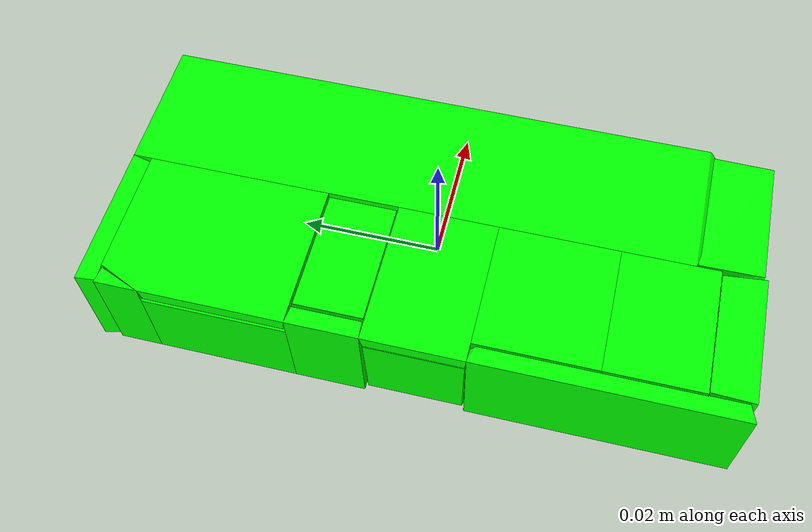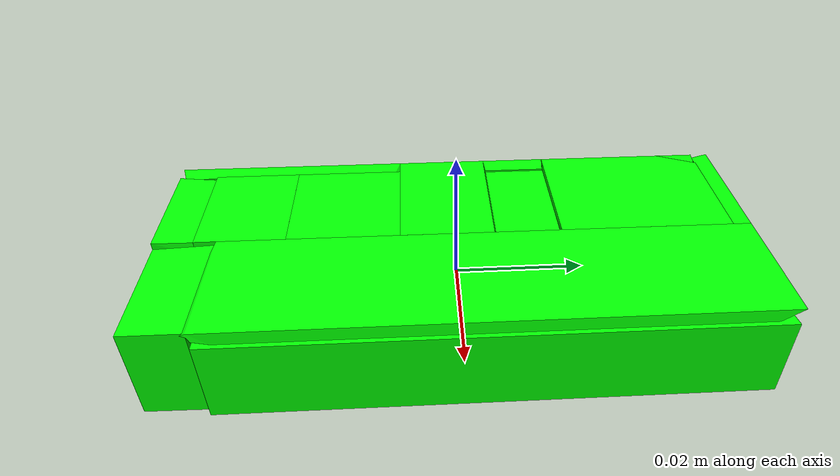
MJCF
<mujoco model="shapenet4-19">
  <asset>
    <mesh file="meshes/shapenet4-19/shapenet4-19_0.stl" name="shapenet4-19_0" scale="0.1 0.1 0.1"/>
    <mesh file="meshes/shapenet4-19/shapenet4-19_1.stl" name="shapenet4-19_1" scale="0.1 0.1 0.1"/>
    <mesh file="meshes/shapenet4-19/shapenet4-19_2.stl" name="shapenet4-19_2" scale="0.1 0.1 0.1"/>
    <mesh file="meshes/shapenet4-19/shapenet4-19_3.stl" name="shapenet4-19_3" scale="0.1 0.1 0.1"/>
    <mesh file="meshes/shapenet4-19/shapenet4-19_4.stl" name="shapenet4-19_4" scale="0.1 0.1 0.1"/>
    <mesh file="meshes/shapenet4-19/shapenet4-19_5.stl" name="shapenet4-19_5" scale="0.1 0.1 0.1"/>
    <mesh file="meshes/shapenet4-19/shapenet4-19_6.stl" name="shapenet4-19_6" scale="0.1 0.1 0.1"/>
    <mesh file="meshes/shapenet4-19/shapenet4-19_7.stl" name="shapenet4-19_7" scale="0.1 0.1 0.1"/>
    <mesh file="meshes/shapenet4-19/shapenet4-19_8.stl" name="shapenet4-19_8" scale="0.1 0.1 0.1"/>
    <mesh file="meshes/shapenet4-19/shapenet4-19_9.stl" name="shapenet4-19_9" scale="0.1 0.1 0.1"/>
    <mesh file="meshes/shapenet4-19/shapenet4-19_10.stl" name="shapenet4-19_10" scale="0.1 0.1 0.1"/>
    <mesh file="meshes/shapenet4-19/shapenet4-19_11.stl" name="shapenet4-19_11" scale="0.1 0.1 0.1"/>
    <mesh file="meshes/shapenet4-19/shapenet4-19_12.stl" name="shapenet4-19_12" scale="0.1 0.1 0.1"/>
    <mesh file="meshes/shapenet4-19/shapenet4-19_13.stl" name="shapenet4-19_13" scale="0.1 0.1 0.1"/>
    <mesh file="meshes/shapenet4-19/shapenet4-19_14.stl" name="shapenet4-19_14" scale="0.1 0.1 0.1"/>
    <mesh file="meshes/shapenet4-19/shapenet4-19_15.stl" name="shapenet4-19_15" scale="0.1 0.1 0.1"/>
    <mesh file="meshes/shapenet4-19/shapenet4-19_16.stl" name="shapenet4-19_16" scale="0.1 0.1 0.1"/>
    <mesh file="meshes/shapenet4-19/shapenet4-19_17.stl" name="shapenet4-19_17" scale="0.1 0.1 0.1"/>
    <mesh file="meshes/shapenet4-19/shapenet4-19_18.stl" name="shapenet4-19_18" scale="0.1 0.1 0.1"/>
    <mesh file="meshes/shapenet4-19/shapenet4-19_19.stl" name="shapenet4-19_19" scale="0.1 0.1 0.1"/>
  </asset>
  <worldbody>
    <body>
      <body name="collision">
        <geom pos="0 0 0" mesh="shapenet4-19_0" type="mesh" solimp="0.998 0.998 0.001" solref="0.001 1" density="100" friction="0.95 0.3 0.1" rgba="0 1 0 1" group="1" condim="4"/>
        <geom pos="0 0 0" mesh="shapenet4-19_1" type="mesh" solimp="0.998 0.998 0.001" solref="0.001 1" density="100" friction="0.95 0.3 0.1" rgba="0 1 0 1" group="1" condim="4"/>
        <geom pos="0 0 0" mesh="shapenet4-19_2" type="mesh" solimp="0.998 0.998 0.001" solref="0.001 1" density="100" friction="0.95 0.3 0.1" rgba="0 1 0 1" group="1" condim="4"/>
        <geom pos="0 0 0" mesh="shapenet4-19_3" type="mesh" solimp="0.998 0.998 0.001" solref="0.001 1" density="100" friction="0.95 0.3 0.1" rgba="0 1 0 1" group="1" condim="4"/>
        <geom pos="0 0 0" mesh="shapenet4-19_4" type="mesh" solimp="0.998 0.998 0.001" solref="0.001 1" density="100" friction="0.95 0.3 0.1" rgba="0 1 0 1" group="1" condim="4"/>
        <geom pos="0 0 0" mesh="shapenet4-19_5" type="mesh" solimp="0.998 0.998 0.001" solref="0.001 1" density="100" friction="0.95 0.3 0.1" rgba="0 1 0 1" group="1" condim="4"/>
        <geom pos="0 0 0" mesh="shapenet4-19_6" type="mesh" solimp="0.998 0.998 0.001" solref="0.001 1" density="100" friction="0.95 0.3 0.1" rgba="0 1 0 1" group="1" condim="4"/>
        <geom pos="0 0 0" mesh="shapenet4-19_7" type="mesh" solimp="0.998 0.998 0.001" solref="0.001 1" density="100" friction="0.95 0.3 0.1" rgba="0 1 0 1" group="1" condim="4"/>
        <geom pos="0 0 0" mesh="shapenet4-19_8" type="mesh" solimp="0.998 0.998 0.001" solref="0.001 1" density="100" friction="0.95 0.3 0.1" rgba="0 1 0 1" group="1" condim="4"/>
        <geom pos="0 0 0" mesh="shapenet4-19_9" type="mesh" solimp="0.998 0.998 0.001" solref="0.001 1" density="100" friction="0.95 0.3 0.1" rgba="0 1 0 1" group="1" condim="4"/>
        <geom pos="0 0 0" mesh="shapenet4-19_10" type="mesh" solimp="0.998 0.998 0.001" solref="0.001 1" density="100" friction="0.95 0.3 0.1" rgba="0 1 0 1" group="1" condim="4"/>
        <geom pos="0 0 0" mesh="shapenet4-19_11" type="mesh" solimp="0.998 0.998 0.001" solref="0.001 1" density="100" friction="0.95 0.3 0.1" rgba="0 1 0 1" group="1" condim="4"/>
        <geom pos="0 0 0" mesh="shapenet4-19_12" type="mesh" solimp="0.998 0.998 0.001" solref="0.001 1" density="100" friction="0.95 0.3 0.1" rgba="0 1 0 1" group="1" condim="4"/>
        <geom pos="0 0 0" mesh="shapenet4-19_13" type="mesh" solimp="0.998 0.998 0.001" solref="0.001 1" density="100" friction="0.95 0.3 0.1" rgba="0 1 0 1" group="1" condim="4"/>
        <geom pos="0 0 0" mesh="shapenet4-19_14" type="mesh" solimp="0.998 0.998 0.001" solref="0.001 1" density="100" friction="0.95 0.3 0.1" rgba="0 1 0 1" group="1" condim="4"/>
        <geom pos="0 0 0" mesh="shapenet4-19_15" type="mesh" solimp="0.998 0.998 0.001" solref="0.001 1" density="100" friction="0.95 0.3 0.1" rgba="0 1 0 1" group="1" condim="4"/>
        <geom pos="0 0 0" mesh="shapenet4-19_16" type="mesh" solimp="0.998 0.998 0.001" solref="0.001 1" density="100" friction="0.95 0.3 0.1" rgba="0 1 0 1" group="1" condim="4"/>
        <geom pos="0 0 0" mesh="shapenet4-19_17" type="mesh" solimp="0.998 0.998 0.001" solref="0.001 1" density="100" friction="0.95 0.3 0.1" rgba="0 1 0 1" group="1" condim="4"/>
        <geom pos="0 0 0" mesh="shapenet4-19_18" type="mesh" solimp="0.998 0.998 0.001" solref="0.001 1" density="100" friction="0.95 0.3 0.1" rgba="0 1 0 1" group="1" condim="4"/>
        <geom pos="0 0 0" mesh="shapenet4-19_19" type="mesh" solimp="0.998 0.998 0.001" solref="0.001 1" density="100" friction="0.95 0.3 0.1" rgba="0 1 0 1" group="1" condim="4"/>
      </body>
      <body name="visual">
        <geom pos="0 0 0" mesh="shapenet4-19_0" type="mesh" rgba="0 1 0 1" conaffinity="0" contype="0" group="0" mass="0.0001"/>
        <geom pos="0 0 0" mesh="shapenet4-19_1" type="mesh" rgba="0 1 0 1" conaffinity="0" contype="0" group="0" mass="0.0001"/>
        <geom pos="0 0 0" mesh="shapenet4-19_2" type="mesh" rgba="0 1 0 1" conaffinity="0" contype="0" group="0" mass="0.0001"/>
        <geom pos="0 0 0" mesh="shapenet4-19_3" type="mesh" rgba="0 1 0 1" conaffinity="0" contype="0" group="0" mass="0.0001"/>
        <geom pos="0 0 0" mesh="shapenet4-19_4" type="mesh" rgba="0 1 0 1" conaffinity="0" contype="0" group="0" mass="0.0001"/>
        <geom pos="0 0 0" mesh="shapenet4-19_5" type="mesh" rgba="0 1 0 1" conaffinity="0" contype="0" group="0" mass="0.0001"/>
        <geom pos="0 0 0" mesh="shapenet4-19_6" type="mesh" rgba="0 1 0 1" conaffinity="0" contype="0" group="0" mass="0.0001"/>
        <geom pos="0 0 0" mesh="shapenet4-19_7" type="mesh" rgba="0 1 0 1" conaffinity="0" contype="0" group="0" mass="0.0001"/>
        <geom pos="0 0 0" mesh="shapenet4-19_8" type="mesh" rgba="0 1 0 1" conaffinity="0" contype="0" group="0" mass="0.0001"/>
        <geom pos="0 0 0" mesh="shapenet4-19_9" type="mesh" rgba="0 1 0 1" conaffinity="0" contype="0" group="0" mass="0.0001"/>
        <geom pos="0 0 0" mesh="shapenet4-19_10" type="mesh" rgba="0 1 0 1" conaffinity="0" contype="0" group="0" mass="0.0001"/>
        <geom pos="0 0 0" mesh="shapenet4-19_11" type="mesh" rgba="0 1 0 1" conaffinity="0" contype="0" group="0" mass="0.0001"/>
        <geom pos="0 0 0" mesh="shapenet4-19_12" type="mesh" rgba="0 1 0 1" conaffinity="0" contype="0" group="0" mass="0.0001"/>
        <geom pos="0 0 0" mesh="shapenet4-19_13" type="mesh" rgba="0 1 0 1" conaffinity="0" contype="0" group="0" mass="0.0001"/>
        <geom pos="0 0 0" mesh="shapenet4-19_14" type="mesh" rgba="0 1 0 1" conaffinity="0" contype="0" group="0" mass="0.0001"/>
        <geom pos="0 0 0" mesh="shapenet4-19_15" type="mesh" rgba="0 1 0 1" conaffinity="0" contype="0" group="0" mass="0.0001"/>
        <geom pos="0 0 0" mesh="shapenet4-19_16" type="mesh" rgba="0 1 0 1" conaffinity="0" contype="0" group="0" mass="0.0001"/>
        <geom pos="0 0 0" mesh="shapenet4-19_17" type="mesh" rgba="0 1 0 1" conaffinity="0" contype="0" group="0" mass="0.0001"/>
        <geom pos="0 0 0" mesh="shapenet4-19_18" type="mesh" rgba="0 1 0 1" conaffinity="0" contype="0" group="0" mass="0.0001"/>
        <geom pos="0 0 0" mesh="shapenet4-19_19" type="mesh" rgba="0 1 0 1" conaffinity="0" contype="0" group="0" mass="0.0001"/>
      </body>
      <site rgba="0 0 0 0" size="0.005" pos="0 0 -0.06" name="bottom_site"/>
      <site rgba="0 0 0 0" size="0.005" pos="0 0 0.04" name="top_site"/>
      <site rgba="0 0 0 0" size="0.005" pos="0.025 0.025 0" name="horizontal_radius_site"/>
    </body>
  </worldbody>
</mujoco>
